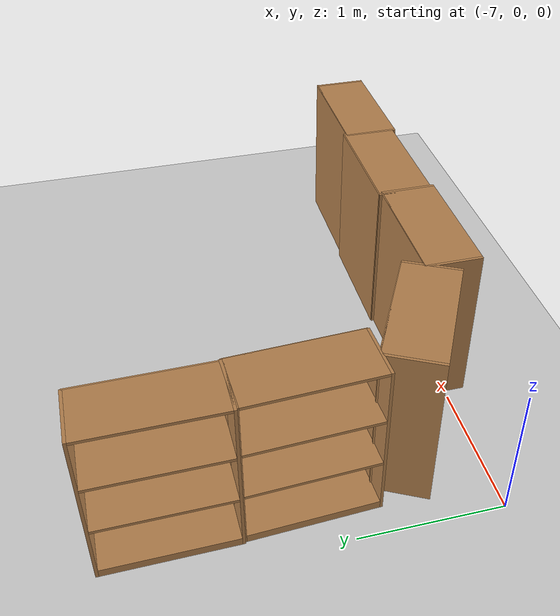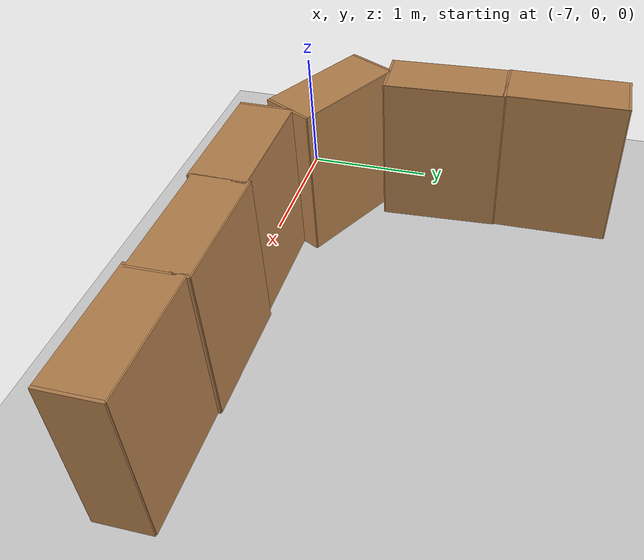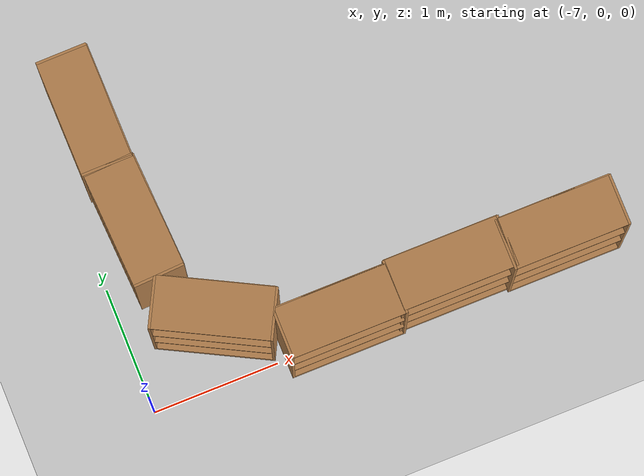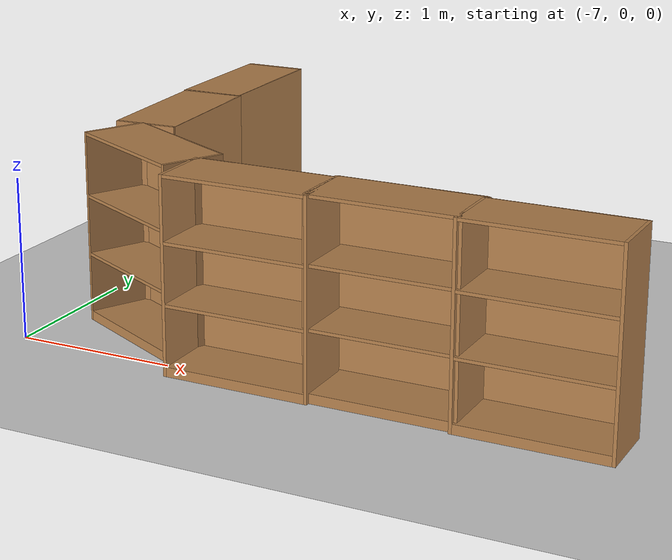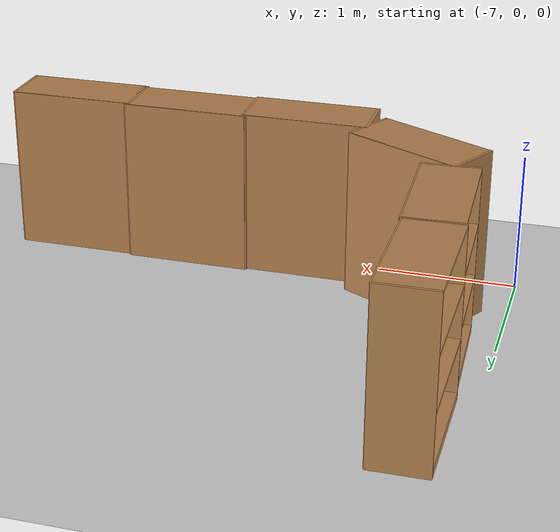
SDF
<sdf version="1.4">
 <world name="default">
  <model name="ground_plane">
   <static>1</static>
   <link name="link">
    <collision name="collision">
     <geometry><plane><normal>0 0 1</normal><size>100 100</size></plane></geometry>
     <surface><friction><ode><mu>100</mu><mu2>50</mu2></ode></friction></surface>
    </collision>
    <visual name="visual">
     <cast_shadows>0</cast_shadows>
     <geometry><plane><normal>0 0 1</normal><size>100 100</size></plane></geometry>
     <material>
      <script><uri>file://media/materials/scripts/gazebo.material</uri><name>Gazebo/Grey</name></script>
     </material>
    </visual>
    <velocity_decay><linear>0</linear><angular>0</angular></velocity_decay>
   </link>
  </model>
  <model name="bookshelf_9">
   <static>1</static>
   <link name="link">
    <inertial><mass>1</mass></inertial>
    <collision name="back">
     <pose>0 0.005 0.6 0 -0 0</pose>
     <geometry><box><size>0.9 0.01 1.2</size></box></geometry>
    </collision>
    <visual name="visual1">
     <pose>0 0.005 0.6 0 -0 0</pose>
     <geometry><box><size>0.9 0.01 1.2</size></box></geometry>
     <material>
      <script><uri>file://media/materials/scripts/gazebo.material</uri><name>Gazebo/Wood</name></script>
     </material>
    </visual>
    <collision name="left_side">
     <pose>0.45 -0.195 0.6 0 -0 0</pose>
     <geometry><box><size>0.02 0.4 1.2</size></box></geometry>
    </collision>
    <visual name="visual2">
     <pose>0.45 -0.195 0.6 0 -0 0</pose>
     <geometry><box><size>0.02 0.4 1.2</size></box></geometry>
     <material>
      <script><uri>file://media/materials/scripts/gazebo.material</uri><name>Gazebo/Wood</name></script>
     </material>
    </visual>
    <collision name="right_side">
     <pose>-0.45 -0.195 0.6 0 -0 0</pose>
     <geometry><box><size>0.02 0.4 1.2</size></box></geometry>
    </collision>
    <visual name="visual3">
     <pose>-0.45 -0.195 0.6 0 -0 0</pose>
     <geometry><box><size>0.02 0.4 1.2</size></box></geometry>
     <material>
      <script><uri>file://media/materials/scripts/gazebo.material</uri><name>Gazebo/Wood</name></script>
     </material>
    </visual>
    <collision name="bottom">
     <pose>0 -0.195 0.03 0 -0 0</pose>
     <geometry><box><size>0.88 0.4 0.06</size></box></geometry>
    </collision>
    <visual name="visual4">
     <pose>0 -0.195 0.03 0 -0 0</pose>
     <geometry><box><size>0.88 0.4 0.06</size></box></geometry>
     <material>
      <script><uri>file://media/materials/scripts/gazebo.material</uri><name>Gazebo/Wood</name></script>
     </material>
    </visual>
    <collision name="top">
     <pose>0 -0.195 1.19 0 -0 0</pose>
     <geometry><box><size>0.88 0.4 0.02</size></box></geometry>
    </collision>
    <visual name="visual5">
     <pose>0 -0.195 1.19 0 -0 0</pose>
     <geometry><box><size>0.88 0.4 0.02</size></box></geometry>
     <material>
      <script><uri>file://media/materials/scripts/gazebo.material</uri><name>Gazebo/Wood</name></script>
     </material>
    </visual>
    <collision name="low_shelf">
     <pose>0 -0.195 0.43 0 -0 0</pose>
     <geometry><box><size>0.88 0.4 0.02</size></box></geometry>
    </collision>
    <visual name="visual6">
     <pose>0 -0.195 0.43 0 -0 0</pose>
     <geometry><box><size>0.88 0.4 0.02</size></box></geometry>
     <material>
      <script><uri>file://media/materials/scripts/gazebo.material</uri><name>Gazebo/Wood</name></script>
     </material>
    </visual>
    <collision name="high_shelf">
     <pose>0 -0.195 0.8 0 -0 0</pose>
     <geometry><box><size>0.88 0.4 0.02</size></box></geometry>
    </collision>
    <visual name="visual7">
     <pose>0 -0.195 0.8 0 -0 0</pose>
     <geometry><box><size>0.88 0.4 0.02</size></box></geometry>
     <material>
      <script><uri>file://media/materials/scripts/gazebo.material</uri><name>Gazebo/Wood</name></script>
     </material>
    </visual>
    <velocity_decay><linear>0</linear><angular>0</angular></velocity_decay>
   </link>
   <pose>-3.71688 0.248337 0 0 -0 0</pose>
  </model>
  <model name="bookshelf_10">
   <static>1</static>
   <link name="link">
    <inertial><mass>1</mass></inertial>
    <collision name="back">
     <pose>0 0.005 0.6 0 -0 0</pose>
     <geometry><box><size>0.9 0.01 1.2</size></box></geometry>
    </collision>
    <visual name="visual1">
     <pose>0 0.005 0.6 0 -0 0</pose>
     <geometry><box><size>0.9 0.01 1.2</size></box></geometry>
     <material>
      <script><uri>file://media/materials/scripts/gazebo.material</uri><name>Gazebo/Wood</name></script>
     </material>
    </visual>
    <collision name="left_side">
     <pose>0.45 -0.195 0.6 0 -0 0</pose>
     <geometry><box><size>0.02 0.4 1.2</size></box></geometry>
    </collision>
    <visual name="visual2">
     <pose>0.45 -0.195 0.6 0 -0 0</pose>
     <geometry><box><size>0.02 0.4 1.2</size></box></geometry>
     <material>
      <script><uri>file://media/materials/scripts/gazebo.material</uri><name>Gazebo/Wood</name></script>
     </material>
    </visual>
    <collision name="right_side">
     <pose>-0.45 -0.195 0.6 0 -0 0</pose>
     <geometry><box><size>0.02 0.4 1.2</size></box></geometry>
    </collision>
    <visual name="visual3">
     <pose>-0.45 -0.195 0.6 0 -0 0</pose>
     <geometry><box><size>0.02 0.4 1.2</size></box></geometry>
     <material>
      <script><uri>file://media/materials/scripts/gazebo.material</uri><name>Gazebo/Wood</name></script>
     </material>
    </visual>
    <collision name="bottom">
     <pose>0 -0.195 0.03 0 -0 0</pose>
     <geometry><box><size>0.88 0.4 0.06</size></box></geometry>
    </collision>
    <visual name="visual4">
     <pose>0 -0.195 0.03 0 -0 0</pose>
     <geometry><box><size>0.88 0.4 0.06</size></box></geometry>
     <material>
      <script><uri>file://media/materials/scripts/gazebo.material</uri><name>Gazebo/Wood</name></script>
     </material>
    </visual>
    <collision name="top">
     <pose>0 -0.195 1.19 0 -0 0</pose>
     <geometry><box><size>0.88 0.4 0.02</size></box></geometry>
    </collision>
    <visual name="visual5">
     <pose>0 -0.195 1.19 0 -0 0</pose>
     <geometry><box><size>0.88 0.4 0.02</size></box></geometry>
     <material>
      <script><uri>file://media/materials/scripts/gazebo.material</uri><name>Gazebo/Wood</name></script>
     </material>
    </visual>
    <collision name="low_shelf">
     <pose>0 -0.195 0.43 0 -0 0</pose>
     <geometry><box><size>0.88 0.4 0.02</size></box></geometry>
    </collision>
    <visual name="visual6">
     <pose>0 -0.195 0.43 0 -0 0</pose>
     <geometry><box><size>0.88 0.4 0.02</size></box></geometry>
     <material>
      <script><uri>file://media/materials/scripts/gazebo.material</uri><name>Gazebo/Wood</name></script>
     </material>
    </visual>
    <collision name="high_shelf">
     <pose>0 -0.195 0.8 0 -0 0</pose>
     <geometry><box><size>0.88 0.4 0.02</size></box></geometry>
    </collision>
    <visual name="visual7">
     <pose>0 -0.195 0.8 0 -0 0</pose>
     <geometry><box><size>0.88 0.4 0.02</size></box></geometry>
     <material>
      <script><uri>file://media/materials/scripts/gazebo.material</uri><name>Gazebo/Wood</name></script>
     </material>
    </visual>
    <velocity_decay><linear>0</linear><angular>0</angular></velocity_decay>
   </link>
   <pose>-4.59576 0.271281 0 0 -0 0</pose>
  </model>
  <model name="bookshelf_13">
   <static>1</static>
   <link name="link">
    <inertial><mass>1</mass></inertial>
    <collision name="back">
     <pose>0 0.005 0.6 0 -0 0</pose>
     <geometry><box><size>0.9 0.01 1.2</size></box></geometry>
    </collision>
    <visual name="visual1">
     <pose>0 0.005 0.6 0 -0 0</pose>
     <geometry><box><size>0.9 0.01 1.2</size></box></geometry>
     <material>
      <script><uri>file://media/materials/scripts/gazebo.material</uri><name>Gazebo/Wood</name></script>
     </material>
    </visual>
    <collision name="left_side">
     <pose>0.45 -0.195 0.6 0 -0 0</pose>
     <geometry><box><size>0.02 0.4 1.2</size></box></geometry>
    </collision>
    <visual name="visual2">
     <pose>0.45 -0.195 0.6 0 -0 0</pose>
     <geometry><box><size>0.02 0.4 1.2</size></box></geometry>
     <material>
      <script><uri>file://media/materials/scripts/gazebo.material</uri><name>Gazebo/Wood</name></script>
     </material>
    </visual>
    <collision name="right_side">
     <pose>-0.45 -0.195 0.6 0 -0 0</pose>
     <geometry><box><size>0.02 0.4 1.2</size></box></geometry>
    </collision>
    <visual name="visual3">
     <pose>-0.45 -0.195 0.6 0 -0 0</pose>
     <geometry><box><size>0.02 0.4 1.2</size></box></geometry>
     <material>
      <script><uri>file://media/materials/scripts/gazebo.material</uri><name>Gazebo/Wood</name></script>
     </material>
    </visual>
    <collision name="bottom">
     <pose>0 -0.195 0.03 0 -0 0</pose>
     <geometry><box><size>0.88 0.4 0.06</size></box></geometry>
    </collision>
    <visual name="visual4">
     <pose>0 -0.195 0.03 0 -0 0</pose>
     <geometry><box><size>0.88 0.4 0.06</size></box></geometry>
     <material>
      <script><uri>file://media/materials/scripts/gazebo.material</uri><name>Gazebo/Wood</name></script>
     </material>
    </visual>
    <collision name="top">
     <pose>0 -0.195 1.19 0 -0 0</pose>
     <geometry><box><size>0.88 0.4 0.02</size></box></geometry>
    </collision>
    <visual name="visual5">
     <pose>0 -0.195 1.19 0 -0 0</pose>
     <geometry><box><size>0.88 0.4 0.02</size></box></geometry>
     <material>
      <script><uri>file://media/materials/scripts/gazebo.material</uri><name>Gazebo/Wood</name></script>
     </material>
    </visual>
    <collision name="low_shelf">
     <pose>0 -0.195 0.43 0 -0 0</pose>
     <geometry><box><size>0.88 0.4 0.02</size></box></geometry>
    </collision>
    <visual name="visual6">
     <pose>0 -0.195 0.43 0 -0 0</pose>
     <geometry><box><size>0.88 0.4 0.02</size></box></geometry>
     <material>
      <script><uri>file://media/materials/scripts/gazebo.material</uri><name>Gazebo/Wood</name></script>
     </material>
    </visual>
    <collision name="high_shelf">
     <pose>0 -0.195 0.8 0 -0 0</pose>
     <geometry><box><size>0.88 0.4 0.02</size></box></geometry>
    </collision>
    <visual name="visual7">
     <pose>0 -0.195 0.8 0 -0 0</pose>
     <geometry><box><size>0.88 0.4 0.02</size></box></geometry>
     <material>
      <script><uri>file://media/materials/scripts/gazebo.material</uri><name>Gazebo/Wood</name></script>
     </material>
    </visual>
    <velocity_decay><linear>0</linear><angular>0</angular></velocity_decay>
   </link>
   <pose>-5.47579 0.247086 0 0 -0 0</pose>
  </model>
  <model name="bookshelf_14">
   <static>1</static>
   <link name="link">
    <inertial><mass>1</mass></inertial>
    <collision name="back">
     <pose>0 0.005 0.6 0 -0 0</pose>
     <geometry><box><size>0.9 0.01 1.2</size></box></geometry>
    </collision>
    <visual name="visual1">
     <pose>0 0.005 0.6 0 -0 0</pose>
     <geometry><box><size>0.9 0.01 1.2</size></box></geometry>
     <material>
      <script><uri>file://media/materials/scripts/gazebo.material</uri><name>Gazebo/Wood</name></script>
     </material>
    </visual>
    <collision name="left_side">
     <pose>0.45 -0.195 0.6 0 -0 0</pose>
     <geometry><box><size>0.02 0.4 1.2</size></box></geometry>
    </collision>
    <visual name="visual2">
     <pose>0.45 -0.195 0.6 0 -0 0</pose>
     <geometry><box><size>0.02 0.4 1.2</size></box></geometry>
     <material>
      <script><uri>file://media/materials/scripts/gazebo.material</uri><name>Gazebo/Wood</name></script>
     </material>
    </visual>
    <collision name="right_side">
     <pose>-0.45 -0.195 0.6 0 -0 0</pose>
     <geometry><box><size>0.02 0.4 1.2</size></box></geometry>
    </collision>
    <visual name="visual3">
     <pose>-0.45 -0.195 0.6 0 -0 0</pose>
     <geometry><box><size>0.02 0.4 1.2</size></box></geometry>
     <material>
      <script><uri>file://media/materials/scripts/gazebo.material</uri><name>Gazebo/Wood</name></script>
     </material>
    </visual>
    <collision name="bottom">
     <pose>0 -0.195 0.03 0 -0 0</pose>
     <geometry><box><size>0.88 0.4 0.06</size></box></geometry>
    </collision>
    <visual name="visual4">
     <pose>0 -0.195 0.03 0 -0 0</pose>
     <geometry><box><size>0.88 0.4 0.06</size></box></geometry>
     <material>
      <script><uri>file://media/materials/scripts/gazebo.material</uri><name>Gazebo/Wood</name></script>
     </material>
    </visual>
    <collision name="top">
     <pose>0 -0.195 1.19 0 -0 0</pose>
     <geometry><box><size>0.88 0.4 0.02</size></box></geometry>
    </collision>
    <visual name="visual5">
     <pose>0 -0.195 1.19 0 -0 0</pose>
     <geometry><box><size>0.88 0.4 0.02</size></box></geometry>
     <material>
      <script><uri>file://media/materials/scripts/gazebo.material</uri><name>Gazebo/Wood</name></script>
     </material>
    </visual>
    <collision name="low_shelf">
     <pose>0 -0.195 0.43 0 -0 0</pose>
     <geometry><box><size>0.88 0.4 0.02</size></box></geometry>
    </collision>
    <visual name="visual6">
     <pose>0 -0.195 0.43 0 -0 0</pose>
     <geometry><box><size>0.88 0.4 0.02</size></box></geometry>
     <material>
      <script><uri>file://media/materials/scripts/gazebo.material</uri><name>Gazebo/Wood</name></script>
     </material>
    </visual>
    <collision name="high_shelf">
     <pose>0 -0.195 0.8 0 -0 0</pose>
     <geometry><box><size>0.88 0.4 0.02</size></box></geometry>
    </collision>
    <visual name="visual7">
     <pose>0 -0.195 0.8 0 -0 0</pose>
     <geometry><box><size>0.88 0.4 0.02</size></box></geometry>
     <material>
      <script><uri>file://media/materials/scripts/gazebo.material</uri><name>Gazebo/Wood</name></script>
     </material>
    </visual>
    <velocity_decay><linear>0</linear><angular>0</angular></velocity_decay>
   </link>
   <pose>-6.23598 0.587869 0 0 0 -0.48</pose>
  </model>
  <model name="bookshelf_21">
   <static>1</static>
   <link name="link">
    <inertial><mass>1</mass></inertial>
    <collision name="back">
     <pose>0 0.005 0.6 0 -0 0</pose>
     <geometry><box><size>0.9 0.01 1.2</size></box></geometry>
    </collision>
    <visual name="visual1">
     <pose>0 0.005 0.6 0 -0 0</pose>
     <geometry><box><size>0.9 0.01 1.2</size></box></geometry>
     <material>
      <script><uri>file://media/materials/scripts/gazebo.material</uri><name>Gazebo/Wood</name></script>
     </material>
    </visual>
    <collision name="left_side">
     <pose>0.45 -0.195 0.6 0 -0 0</pose>
     <geometry><box><size>0.02 0.4 1.2</size></box></geometry>
    </collision>
    <visual name="visual2">
     <pose>0.45 -0.195 0.6 0 -0 0</pose>
     <geometry><box><size>0.02 0.4 1.2</size></box></geometry>
     <material>
      <script><uri>file://media/materials/scripts/gazebo.material</uri><name>Gazebo/Wood</name></script>
     </material>
    </visual>
    <collision name="right_side">
     <pose>-0.45 -0.195 0.6 0 -0 0</pose>
     <geometry><box><size>0.02 0.4 1.2</size></box></geometry>
    </collision>
    <visual name="visual3">
     <pose>-0.45 -0.195 0.6 0 -0 0</pose>
     <geometry><box><size>0.02 0.4 1.2</size></box></geometry>
     <material>
      <script><uri>file://media/materials/scripts/gazebo.material</uri><name>Gazebo/Wood</name></script>
     </material>
    </visual>
    <collision name="bottom">
     <pose>0 -0.195 0.03 0 -0 0</pose>
     <geometry><box><size>0.88 0.4 0.06</size></box></geometry>
    </collision>
    <visual name="visual4">
     <pose>0 -0.195 0.03 0 -0 0</pose>
     <geometry><box><size>0.88 0.4 0.06</size></box></geometry>
     <material>
      <script><uri>file://media/materials/scripts/gazebo.material</uri><name>Gazebo/Wood</name></script>
     </material>
    </visual>
    <collision name="top">
     <pose>0 -0.195 1.19 0 -0 0</pose>
     <geometry><box><size>0.88 0.4 0.02</size></box></geometry>
    </collision>
    <visual name="visual5">
     <pose>0 -0.195 1.19 0 -0 0</pose>
     <geometry><box><size>0.88 0.4 0.02</size></box></geometry>
     <material>
      <script><uri>file://media/materials/scripts/gazebo.material</uri><name>Gazebo/Wood</name></script>
     </material>
    </visual>
    <collision name="low_shelf">
     <pose>0 -0.195 0.43 0 -0 0</pose>
     <geometry><box><size>0.88 0.4 0.02</size></box></geometry>
    </collision>
    <visual name="visual6">
     <pose>0 -0.195 0.43 0 -0 0</pose>
     <geometry><box><size>0.88 0.4 0.02</size></box></geometry>
     <material>
      <script><uri>file://media/materials/scripts/gazebo.material</uri><name>Gazebo/Wood</name></script>
     </material>
    </visual>
    <collision name="high_shelf">
     <pose>0 -0.195 0.8 0 -0 0</pose>
     <geometry><box><size>0.88 0.4 0.02</size></box></geometry>
    </collision>
    <visual name="visual7">
     <pose>0 -0.195 0.8 0 -0 0</pose>
     <geometry><box><size>0.88 0.4 0.02</size></box></geometry>
     <material>
      <script><uri>file://media/materials/scripts/gazebo.material</uri><name>Gazebo/Wood</name></script>
     </material>
    </visual>
    <velocity_decay><linear>0</linear><angular>0</angular></velocity_decay>
   </link>
   <pose>-6.43313 1.24556 0 0 0 -1.52</pose>
  </model>
  <model name="bookshelf_22">
   <static>1</static>
   <link name="link">
    <inertial><mass>1</mass></inertial>
    <collision name="back">
     <pose>0 0.005 0.6 0 -0 0</pose>
     <geometry><box><size>0.9 0.01 1.2</size></box></geometry>
    </collision>
    <visual name="visual1">
     <pose>0 0.005 0.6 0 -0 0</pose>
     <geometry><box><size>0.9 0.01 1.2</size></box></geometry>
     <material>
      <script><uri>file://media/materials/scripts/gazebo.material</uri><name>Gazebo/Wood</name></script>
     </material>
    </visual>
    <collision name="left_side">
     <pose>0.45 -0.195 0.6 0 -0 0</pose>
     <geometry><box><size>0.02 0.4 1.2</size></box></geometry>
    </collision>
    <visual name="visual2">
     <pose>0.45 -0.195 0.6 0 -0 0</pose>
     <geometry><box><size>0.02 0.4 1.2</size></box></geometry>
     <material>
      <script><uri>file://media/materials/scripts/gazebo.material</uri><name>Gazebo/Wood</name></script>
     </material>
    </visual>
    <collision name="right_side">
     <pose>-0.45 -0.195 0.6 0 -0 0</pose>
     <geometry><box><size>0.02 0.4 1.2</size></box></geometry>
    </collision>
    <visual name="visual3">
     <pose>-0.45 -0.195 0.6 0 -0 0</pose>
     <geometry><box><size>0.02 0.4 1.2</size></box></geometry>
     <material>
      <script><uri>file://media/materials/scripts/gazebo.material</uri><name>Gazebo/Wood</name></script>
     </material>
    </visual>
    <collision name="bottom">
     <pose>0 -0.195 0.03 0 -0 0</pose>
     <geometry><box><size>0.88 0.4 0.06</size></box></geometry>
    </collision>
    <visual name="visual4">
     <pose>0 -0.195 0.03 0 -0 0</pose>
     <geometry><box><size>0.88 0.4 0.06</size></box></geometry>
     <material>
      <script><uri>file://media/materials/scripts/gazebo.material</uri><name>Gazebo/Wood</name></script>
     </material>
    </visual>
    <collision name="top">
     <pose>0 -0.195 1.19 0 -0 0</pose>
     <geometry><box><size>0.88 0.4 0.02</size></box></geometry>
    </collision>
    <visual name="visual5">
     <pose>0 -0.195 1.19 0 -0 0</pose>
     <geometry><box><size>0.88 0.4 0.02</size></box></geometry>
     <material>
      <script><uri>file://media/materials/scripts/gazebo.material</uri><name>Gazebo/Wood</name></script>
     </material>
    </visual>
    <collision name="low_shelf">
     <pose>0 -0.195 0.43 0 -0 0</pose>
     <geometry><box><size>0.88 0.4 0.02</size></box></geometry>
    </collision>
    <visual name="visual6">
     <pose>0 -0.195 0.43 0 -0 0</pose>
     <geometry><box><size>0.88 0.4 0.02</size></box></geometry>
     <material>
      <script><uri>file://media/materials/scripts/gazebo.material</uri><name>Gazebo/Wood</name></script>
     </material>
    </visual>
    <collision name="high_shelf">
     <pose>0 -0.195 0.8 0 -0 0</pose>
     <geometry><box><size>0.88 0.4 0.02</size></box></geometry>
    </collision>
    <visual name="visual7">
     <pose>0 -0.195 0.8 0 -0 0</pose>
     <geometry><box><size>0.88 0.4 0.02</size></box></geometry>
     <material>
      <script><uri>file://media/materials/scripts/gazebo.material</uri><name>Gazebo/Wood</name></script>
     </material>
    </visual>
    <velocity_decay><linear>0</linear><angular>0</angular></velocity_decay>
   </link>
   <pose>-6.47103 2.13867 0 0 0 -1.56</pose>
  </model>
 </world>
</sdf>
